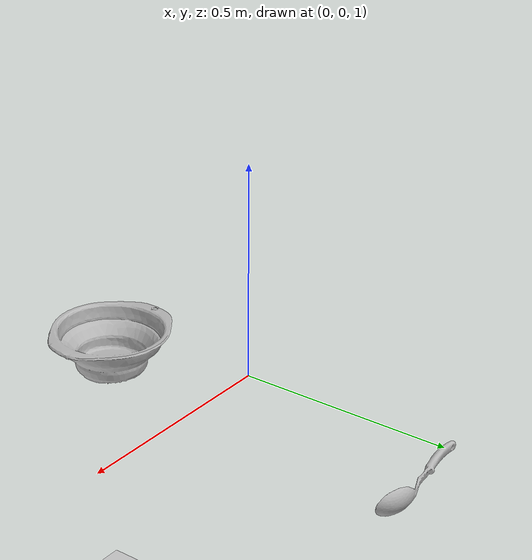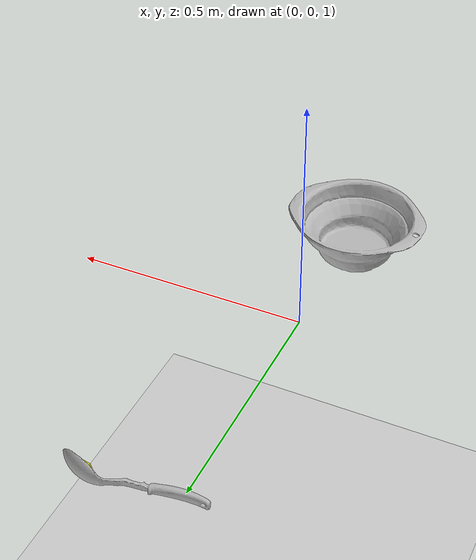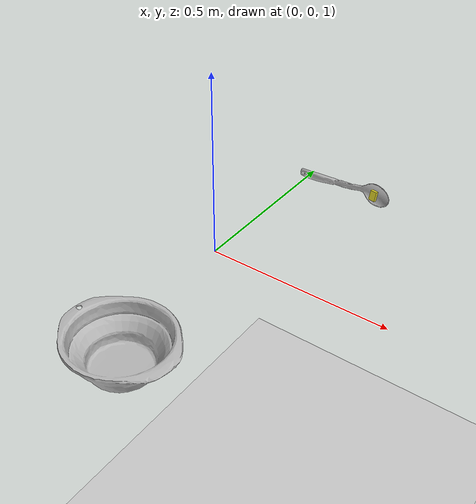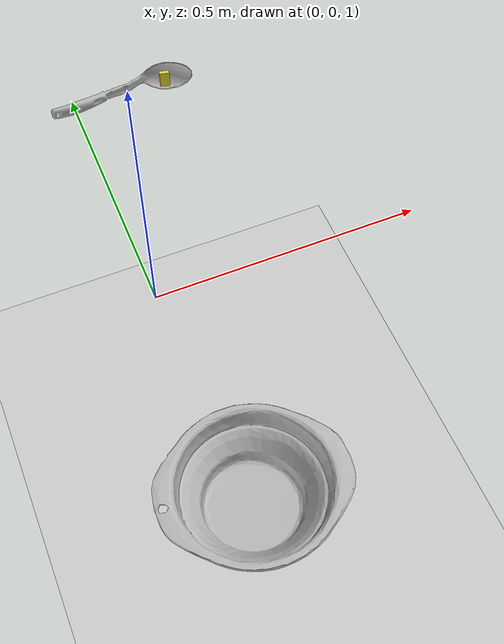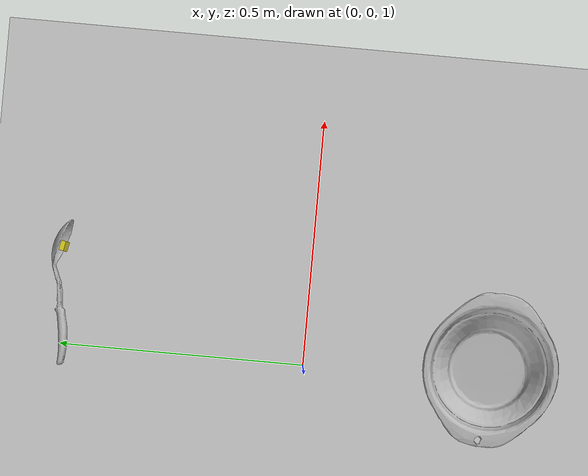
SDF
<?xml version='1.0'?>
<sdf version="1.6">
    <world name="scraping_test">
        <include>
            <uri>model://sun</uri>
        </include>
        <include>
            <uri>model://ground_plane</uri>
        </include>
        <include>
            <uri>model://b_serving_spoon</uri>
            <pose>0.112572 0.508131 0.984633 1.382835 0.015399 0.080779</pose>
        </include>
        <include>
            <uri>model://butter_box</uri>
            <pose>0.198795 0.509112 0.981783 3.036336 1.368174 -1.866245</pose>
            <plugin name="stick" filename="libStickPlugin.so">
                <parentLinkName>link</parentLinkName>
                <childLinkName>b_serving_spoon::link</childLinkName>
                <force>5</force>
            </plugin>
        </include>
        <include>
            <uri>model://b_big_bowl</uri>
            <pose>0.024164 -0.383989 0.959287 -0.017186 -0.000884 -0.101566</pose>
        </include>
        <plugin name="feature_visualization_plugin" filename="libgiskard_visualization_plugin.so"></plugin>
        <gui>
            <camera name='user_camera'>
                <pose>1.700789 1.175709 1.670612 0 0.375643 -2.675000</pose>
                <view_controller>orbit</view_controller>
            </camera>
        </gui>
        <plugin name="l_grip" filename="libGripTool.so">
            <parentLinkName>pr2::l_gripper_l_finger_link</parentLinkName>
            <childLinkName>b_serving_spoon::link</childLinkName>
            <relativePose>0.15 0.00813051871955 0.035 1.3828344221275815 0.015398730956486372 0.08077832485708741</relativePose>
        </plugin>
        <plugin name="r_grip" filename="libGripTool.so">
            <parentLinkName>pr2::r_gripper_l_finger_link</parentLinkName>
            <childLinkName>b_big_bowl::link</childLinkName>
            <relativePose>0.3 0.03 0 1.57 0 0</relativePose>
        </plugin>

    </world>
</sdf>

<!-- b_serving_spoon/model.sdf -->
<sdf version='1.6'>
	<model name='b_serving_spoon'>
		<static>false</static>
		<pose>0 0 0 0 0 0</pose>

		<link name='link'>
			<inertial>
			<mass>0.15</mass>
			<pose>0.0019638 -6.1791e-05 0.00018857 0 0 0</pose>
				<inertia>
					<ixx>0.0000075</ixx>
					<iyy>0.00112875</iyy>
					<izz>0.00112875</izz>
				</inertia>
			</inertial>
			<sensor name="tool_contact_sensor" type="contact">
				<always_on>true</always_on>
				<update_rate>30.0</update_rate>
				<contact>
					<collision>collision</collision>
				</contact>
				<plugin name="tool_bumper" filename="libgazebo_ros_bumper.so">
					<bumperTopicName>tool_contact_sensor_state</bumperTopicName>
					<frameName>world</frameName>
				</plugin>
			</sensor>
			<collision name='collision'>
				<geometry>
					<mesh>
						<uri>model://b_serving_spoon/b_serving_spoon.dae</uri>
					</mesh>
				</geometry>
				<surface>
					<friction>
						<ode>
							<mu>0.2</mu>
							<mu2>0.2</mu2>
						</ode>
					</friction>
				</surface>
			</collision>
			<visual name='visual'>
				<geometry>
					<mesh>
						<uri>model://b_serving_spoon/b_serving_spoon.dae</uri>
					</mesh>
				</geometry>
			</visual>
		</link>
	</model>
</sdf>

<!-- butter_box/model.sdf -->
<sdf version='1.6'>
    <model name='butter_box'>
        <static>false</static>
        <pose>0 0 0 0 0 0</pose>
        <link name='link'>
            <pose>0 0 0 0 0 0</pose>
            <inertial>
                <mass>0.001</mass>
                <pose>0 0 0 0 0 0</pose>
                <inertia>
                    <ixx>0.00000004167</ixx>
                    <iyy>0.00000008333</iyy>
                    <izz>0.00000010833</izz>
                    <ixy>0</ixy>
                    <ixz>0</ixz>
                    <iyz>0</iyz>
                </inertia>
            </inertial>
            <collision name='collision'>
                <geometry>
                    <box>
                        <size>0.03 0.02 0.01</size>
                    </box>
                </geometry>
                <surface>
                    <friction>
                        <ode>
                            <mu>0.2</mu>
                            <mu2>0.2</mu2>
                        </ode>
                    </friction>
                </surface>
            </collision>
            <visual name='visual'>
                <geometry>
                    <box>
                        <size>0.03 0.02 0.01</size>
                    </box>
                </geometry>
                <material>
                    <script>
                        <name>Gazebo/Yellow</name>
                        <uri>file://media/materials/scripts/gazebo.material</uri>
                    </script>
                </material>
            </visual>
        </link>
    </model>
</sdf>

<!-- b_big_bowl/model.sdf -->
<sdf version='1.6'>
	<model name='b_big_bowl'>
		<static>false</static>
		<pose>0 0 0 0 0 0</pose>

		<link name='link'>
			<inertial>
			<mass>0.35</mass>
			<pose>-0.0022966 -0.0039142 0.0041527 0 0 0</pose>
				<inertia>
					<ixx>0.0009479167</ixx>
					<iyy>0.0009479167</iyy>
					<izz>0.00175</izz>
				</inertia>
			</inertial>
			<collision name='collision'>
				<geometry>
					<mesh>
						<uri>model://b_big_bowl/b_big_bowl.dae</uri>
					</mesh>
				</geometry>
				<surface>
					<friction>
						<ode>
							<mu>0.2</mu>
							<mu2>0.2</mu2>
						</ode>
					</friction>
				</surface>
			</collision>
			<visual name='visual'>
				<geometry>
					<mesh>
						<uri>model://b_big_bowl/b_big_bowl.dae</uri>
					</mesh>
				</geometry>
			</visual>
		</link>
	</model>
</sdf>
